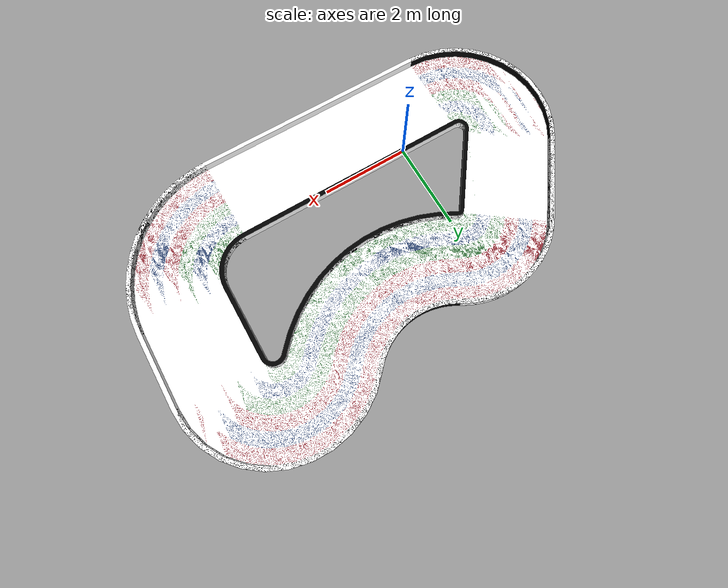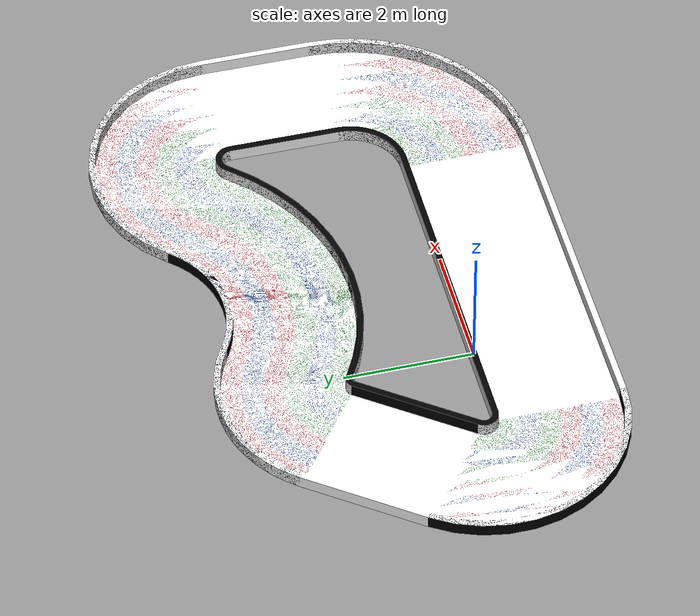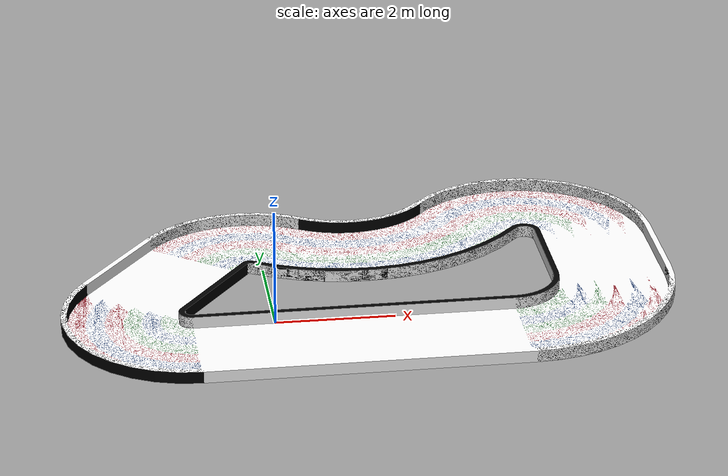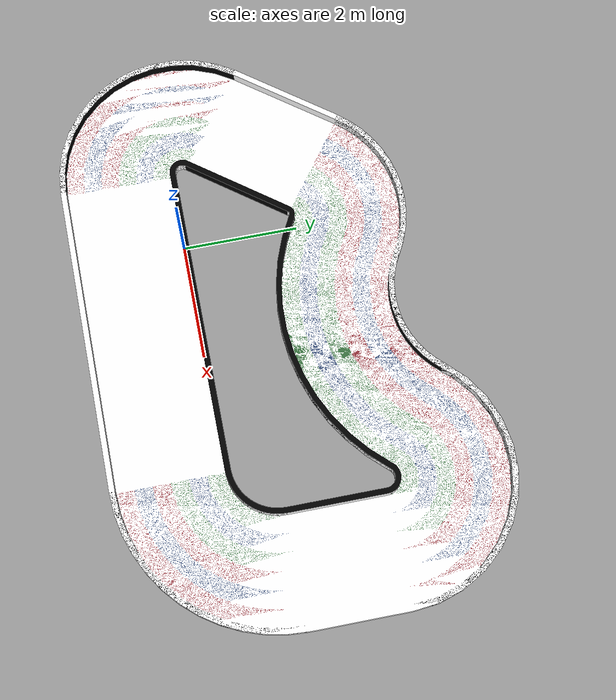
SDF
<?xml version="1.0" ?>

<sdf version="1.4">
  <world name="default">
    <include>
      <uri>model://sun</uri>
    </include>
  <model name="formulapi_track1">
      <pose>0 0 0 0 0 0</pose> <!-- Helps to bring track off ground plane for visualizations -->
      <static>true</static>
    <link name="link">
      <inertial>
        <mass>1000</mass>
      </inertial>
      <collision name="collision">
        <geometry>
          <mesh>
            <uri>model://formulapi_track1/meshes/formulapi_track_1.dae</uri>
          </mesh>
        </geometry>
      </collision>
      <visual name="visual">
        <geometry>
          <mesh>
            <uri>model://formulapi_track1/meshes/formulapi_track_1.dae</uri>
          </mesh>
        </geometry>
      </visual>
    </link>
  </model>
  </world>
</sdf>
